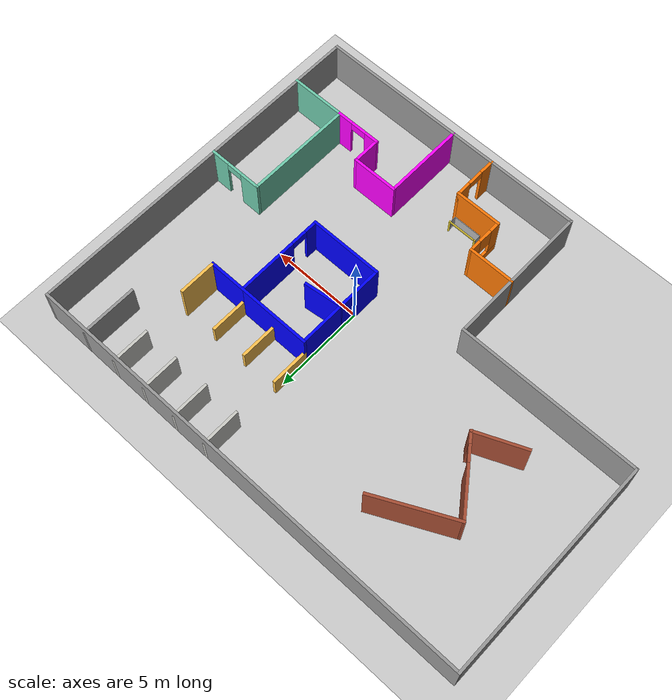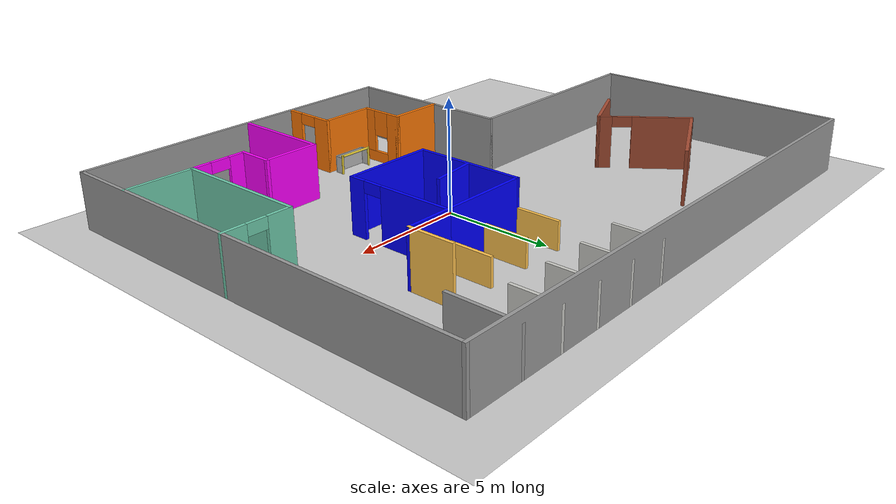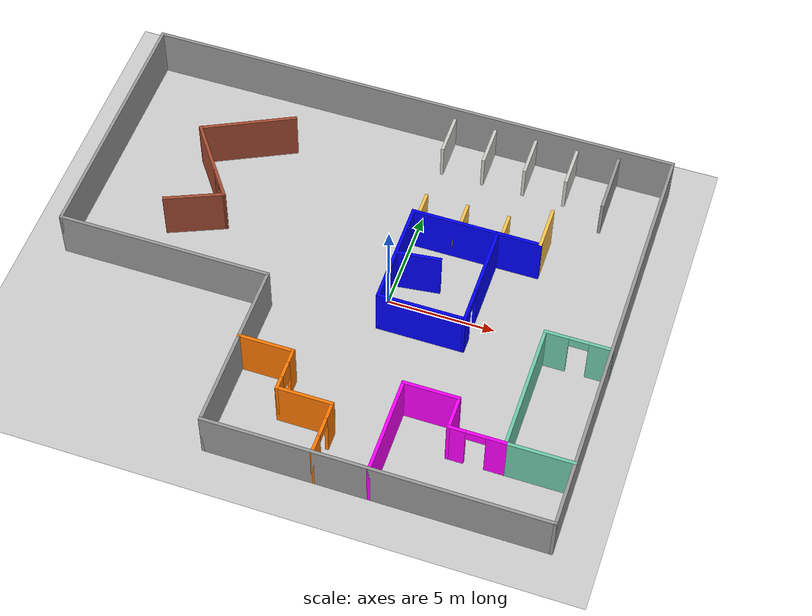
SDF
<sdf version="1.6">
 <world name="default">
  <model name="ground_plane">
   <pose>0 10 0 0 -0 0</pose>
   <static>1</static>
   <link name="link">
    <collision name="collision">
     <geometry><plane><normal>0 0 1</normal><size>100 100</size></plane></geometry>
     <surface><friction><ode><mu>100</mu><mu2>50</mu2></ode></friction></surface>
    </collision>
    <visual name="visual">
     <cast_shadows>0</cast_shadows>
     <geometry><plane><normal>0 0 1</normal><size>100 100</size></plane></geometry>
     <material>
      <script><uri>file://media/materials/scripts/gazebo.material</uri><name>Gazebo/Grey</name></script>
     </material>
    </visual>
   </link>
  </model>
  <model name="model">
   <pose>-2.25 0 0 0 -0 0</pose>
   <link name="Wall_0">
    <collision name="Wall_0_Collision">
     <geometry><box><size>12.15 0.15 2.5</size></box></geometry>
     <pose>0 0 1.25 0 -0 0</pose>
    </collision>
    <visual name="Wall_0_Visual">
     <pose>0 0 1.25 0 -0 0</pose>
     <geometry><box><size>12.15 0.15 2.5</size></box></geometry>
     <material>
      <script><uri>file://media/materials/scripts/gazebo.material</uri><name>Gazebo/Grey</name></script>
      <ambient>1 1 1 1</ambient>
     </material>
     <meta><layer>0</layer></meta>
    </visual>
    <pose>-12.75 4 0 0 0 -1.5708</pose>
   </link>
   <link name="Wall_1">
    <collision name="Wall_1_Collision">
     <geometry><box><size>10.15 0.15 2.5</size></box></geometry>
     <pose>0 0 1.25 0 -0 0</pose>
    </collision>
    <visual name="Wall_1_Visual">
     <pose>0 0 1.25 0 -0 0</pose>
     <geometry><box><size>10.15 0.15 2.5</size></box></geometry>
     <material>
      <script><uri>file://media/materials/scripts/gazebo.material</uri><name>Gazebo/Grey</name></script>
      <ambient>1 1 1 1</ambient>
     </material>
     <meta><layer>0</layer></meta>
    </visual>
    <pose>-7.75 -2 0 0 -0 0</pose>
   </link>
   <link name="Wall_11">
    <collision name="Wall_11_Collision">
     <geometry><box><size>5.15 0.15 2.5</size></box></geometry>
     <pose>0 0 1.25 0 -0 0</pose>
    </collision>
    <visual name="Wall_11_Visual">
     <pose>0 0 1.25 0 -0 0</pose>
     <geometry><box><size>5.15 0.15 2.5</size></box></geometry>
     <material>
      <script><uri>file://media/materials/scripts/gazebo.material</uri><name>Gazebo/Grey</name></script>
      <ambient>0 0 1 1</ambient>
     </material>
     <meta><layer>0</layer></meta>
    </visual>
    <pose>2.25 1 0 0 0 -1.5708</pose>
   </link>
   <link name="Wall_12">
    <collision name="Wall_12_Collision">
     <geometry><box><size>4.15 0.15 2.5</size></box></geometry>
     <pose>0 0 1.25 0 -0 0</pose>
    </collision>
    <visual name="Wall_12_Visual">
     <pose>0 0 1.25 0 -0 0</pose>
     <geometry><box><size>4.15 0.15 2.5</size></box></geometry>
     <material>
      <script><uri>file://media/materials/scripts/gazebo.material</uri><name>Gazebo/Grey</name></script>
      <ambient>0 0 1 1</ambient>
     </material>
     <meta><layer>0</layer></meta>
    </visual>
    <pose>4.25 -1.5 0 0 -0 0</pose>
   </link>
   <link name="Wall_13">
    <pose>6.25 1 0 0 -0 1.5708</pose>
    <visual name="Wall_13_Visual_0">
     <pose>-2.18435 0 1.25 0 -0 0</pose>
     <geometry><box><size>0.781301 0.15 2.5</size></box></geometry>
     <material>
      <script><uri>file://media/materials/scripts/gazebo.material</uri><name>Gazebo/Grey</name></script>
      <ambient>0 0 1 1</ambient>
     </material>
     <meta><layer>0</layer></meta>
    </visual>
    <collision name="Wall_13_Collision_0">
     <geometry><box><size>0.781301 0.15 2.5</size></box></geometry>
     <pose>-2.18435 0 1.25 0 -0 0</pose>
    </collision>
    <visual name="Wall_13_Visual_1">
     <pose>0.840651 0 1.25 0 -0 0</pose>
     <geometry><box><size>3.4687 0.15 2.5</size></box></geometry>
     <material>
      <script><uri>file://media/materials/scripts/gazebo.material</uri><name>Gazebo/Grey</name></script>
      <ambient>0 0 1 1</ambient>
     </material>
     <meta><layer>0</layer></meta>
    </visual>
    <collision name="Wall_13_Collision_1">
     <geometry><box><size>3.4687 0.15 2.5</size></box></geometry>
     <pose>0.840651 0 1.25 0 -0 0</pose>
    </collision>
    <visual name="Wall_13_Visual_2">
     <pose>-1.3437 0 2.25 0 -0 0</pose>
     <geometry><box><size>0.9 0.15 0.5</size></box></geometry>
     <material>
      <script><uri>file://media/materials/scripts/gazebo.material</uri><name>Gazebo/Grey</name></script>
      <ambient>0 0 1 1</ambient>
     </material>
     <meta><layer>0</layer></meta>
    </visual>
    <collision name="Wall_13_Collision_2">
     <geometry><box><size>0.9 0.15 0.5</size></box></geometry>
     <pose>-1.3437 0 2.25 0 -0 0</pose>
    </collision>
   </link>
   <link name="Wall_16">
    <collision name="Wall_16_Collision">
     <geometry><box><size>4.15 0.15 2.5</size></box></geometry>
     <pose>0 0 1.25 0 -0 0</pose>
    </collision>
    <visual name="Wall_16_Visual">
     <pose>0 0 1.25 0 -0 0</pose>
     <geometry><box><size>4.15 0.15 2.5</size></box></geometry>
     <material>
      <script><uri>file://media/materials/scripts/gazebo.material</uri><name>Gazebo/Grey</name></script>
      <ambient>0 0 1 1</ambient>
     </material>
     <meta><layer>0</layer></meta>
    </visual>
    <pose>4.25 3.5 0 0 -0 0</pose>
   </link>
   <link name="Wall_18">
    <collision name="Wall_18_Collision">
     <geometry><box><size>2.15 0.15 1.85</size></box></geometry>
     <pose>0 0 0.925 0 -0 0</pose>
    </collision>
    <visual name="Wall_18_Visual">
     <pose>0 0 0.925 0 -0 0</pose>
     <geometry><box><size>2.15 0.15 1.85</size></box></geometry>
     <material>
      <script><uri>file://media/materials/scripts/gazebo.material</uri><name>Gazebo/CeilingTiled</name></script>
      <ambient>0 0.333333 0.498039 1</ambient>
     </material>
     <meta><layer>0</layer></meta>
    </visual>
    <pose>2.25 9 0 0 0 -1.5708</pose>
   </link>
   <link name="Wall_2">
    <collision name="Wall_2_Collision">
     <geometry><box><size>8.15 0.15 2.5</size></box></geometry>
     <pose>0 0 1.25 0 -0 0</pose>
    </collision>
    <visual name="Wall_2_Visual">
     <pose>0 0 1.25 0 -0 0</pose>
     <geometry><box><size>8.15 0.15 2.5</size></box></geometry>
     <material>
      <script><uri>file://media/materials/scripts/gazebo.material</uri><name>Gazebo/Grey</name></script>
      <ambient>1 1 1 1</ambient>
     </material>
     <meta><layer>0</layer></meta>
    </visual>
    <pose>-2.75 -6 0 0 0 -1.5708</pose>
   </link>
   <link name="Wall_20">
    <collision name="Wall_20_Collision">
     <geometry><box><size>2.15 0.15 1.8</size></box></geometry>
     <pose>0 0 0.9 0 -0 0</pose>
    </collision>
    <visual name="Wall_20_Visual">
     <pose>0 0 0.9 0 -0 0</pose>
     <geometry><box><size>2.15 0.15 1.8</size></box></geometry>
     <material>
      <script><uri>file://media/materials/scripts/gazebo.material</uri><name>Gazebo/CeilingTiled</name></script>
      <ambient>0 0.333333 0.498039 1</ambient>
     </material>
     <meta><layer>0</layer></meta>
    </visual>
    <pose>4.25 9 0 0 0 -1.5708</pose>
   </link>
   <link name="Wall_22">
    <collision name="Wall_22_Collision">
     <geometry><box><size>2.15 0.15 1.8</size></box></geometry>
     <pose>0 0 0.9 0 -0 0</pose>
    </collision>
    <visual name="Wall_22_Visual">
     <pose>0 0 0.9 0 -0 0</pose>
     <geometry><box><size>2.15 0.15 1.8</size></box></geometry>
     <material>
      <script><uri>file://media/materials/scripts/gazebo.material</uri><name>Gazebo/CeilingTiled</name></script>
      <ambient>0 0.333333 0.498039 1</ambient>
     </material>
     <meta><layer>0</layer></meta>
    </visual>
    <pose>6.25 9 0 0 0 -1.5708</pose>
   </link>
   <link name="Wall_24">
    <collision name="Wall_24_Collision">
     <geometry><box><size>2.15 0.15 1.8</size></box></geometry>
     <pose>0 0 0.9 0 -0 0</pose>
    </collision>
    <visual name="Wall_24_Visual">
     <pose>0 0 0.9 0 -0 0</pose>
     <geometry><box><size>2.15 0.15 1.8</size></box></geometry>
     <material>
      <script><uri>file://media/materials/scripts/gazebo.material</uri><name>Gazebo/CeilingTiled</name></script>
      <ambient>0 0.333333 0.498039 1</ambient>
     </material>
     <meta><layer>0</layer></meta>
    </visual>
    <pose>8.25 9 0 0 0 -1.5708</pose>
   </link>
   <link name="Wall_26">
    <collision name="Wall_26_Collision">
     <geometry><box><size>2.15 0.15 1.25</size></box></geometry>
     <pose>0 0 0.625 0 -0 0</pose>
    </collision>
    <visual name="Wall_26_Visual">
     <pose>0 0 0.625 0 -0 0</pose>
     <geometry><box><size>2.15 0.15 1.25</size></box></geometry>
     <material>
      <script><uri>file://media/materials/scripts/gazebo.material</uri><name>Gazebo/Grey</name></script>
      <ambient>1 0.764706 0.305882 1</ambient>
     </material>
     <meta><layer>0</layer></meta>
    </visual>
    <pose>2.25 4.5 0 0 0 -1.5708</pose>
   </link>
   <link name="Wall_28">
    <collision name="Wall_28_Collision">
     <geometry><box><size>2.15 0.15 1.25</size></box></geometry>
     <pose>0 0 0.625 0 -0 0</pose>
    </collision>
    <visual name="Wall_28_Visual">
     <pose>0 0 0.625 0 -0 0</pose>
     <geometry><box><size>2.15 0.15 1.25</size></box></geometry>
     <material>
      <script><uri>file://media/materials/scripts/gazebo.material</uri><name>Gazebo/Grey</name></script>
      <ambient>1 0.764706 0.305882 1</ambient>
     </material>
     <meta><layer>0</layer></meta>
    </visual>
    <pose>4.25 4.5 0 0 -0 1.5708</pose>
   </link>
   <link name="Wall_3">
    <collision name="Wall_3_Collision">
     <geometry><box><size>15.65 0.15 2.5</size></box></geometry>
     <pose>0 0 1.25 0 -0 0</pose>
    </collision>
    <visual name="Wall_3_Visual">
     <pose>0 0 1.25 0 -0 0</pose>
     <geometry><box><size>15.65 0.15 2.5</size></box></geometry>
     <material>
      <script><uri>file://media/materials/scripts/gazebo.material</uri><name>Gazebo/Grey</name></script>
      <ambient>1 1 1 1</ambient>
     </material>
     <meta><layer>0</layer></meta>
    </visual>
    <pose>5 -10 0 0 -0 0</pose>
   </link>
   <link name="Wall_30">
    <collision name="Wall_30_Collision">
     <geometry><box><size>2.15 0.15 1.25</size></box></geometry>
     <pose>0 0 0.625 0 -0 0</pose>
    </collision>
    <visual name="Wall_30_Visual">
     <pose>0 0 0.625 0 -0 0</pose>
     <geometry><box><size>2.15 0.15 1.25</size></box></geometry>
     <material>
      <script><uri>file://media/materials/scripts/gazebo.material</uri><name>Gazebo/Grey</name></script>
      <ambient>1 0.764706 0.305882 1</ambient>
     </material>
     <meta><layer>0</layer></meta>
    </visual>
    <pose>6.25 4.5 0 0 0 -1.5708</pose>
   </link>
   <link name="Wall_32">
    <collision name="Wall_32_Collision">
     <geometry><box><size>3.15 0.15 2</size></box></geometry>
     <pose>0 0 1 0 -0 0</pose>
    </collision>
    <visual name="Wall_32_Visual">
     <pose>0 0 1 0 -0 0</pose>
     <geometry><box><size>3.15 0.15 2</size></box></geometry>
     <material>
      <script><uri>file://media/materials/scripts/gazebo.material</uri><name>Gazebo/Grey</name></script>
      <ambient>0.207843 0.207843 0.207843 1</ambient>
     </material>
     <meta><layer>0</layer></meta>
    </visual>
    <pose>10.25 8.5 0 0 0 -1.5708</pose>
   </link>
   <link name="Wall_34">
    <collision name="Wall_34_Collision">
     <geometry><box><size>2.15 0.15 2.5</size></box></geometry>
     <pose>0 0 1.25 0 -0 0</pose>
    </collision>
    <visual name="Wall_34_Visual">
     <pose>0 0 1.25 0 -0 0</pose>
     <geometry><box><size>2.15 0.15 2.5</size></box></geometry>
     <material>
      <script><uri>file://media/materials/scripts/gazebo.material</uri><name>Gazebo/Grey</name></script>
      <ambient>1 0.764706 0.305882 1</ambient>
     </material>
     <meta><layer>0</layer></meta>
    </visual>
    <pose>8.25 4.5 0 0 0 -1.5708</pose>
   </link>
   <link name="Wall_36">
    <collision name="Wall_36_Collision">
     <geometry><box><size>2.15 0.15 2.5</size></box></geometry>
     <pose>0 0 1.25 0 -0 0</pose>
    </collision>
    <visual name="Wall_36_Visual">
     <pose>0 0 1.25 0 -0 0</pose>
     <geometry><box><size>2.15 0.15 2.5</size></box></geometry>
     <material>
      <script><uri>file://media/materials/scripts/gazebo.material</uri><name>Gazebo/Grey</name></script>
      <ambient>0 0 1 1</ambient>
     </material>
     <meta><layer>0</layer></meta>
    </visual>
    <pose>7.25 3.5 0 0 -0 3.14159</pose>
   </link>
   <link name="Wall_38">
    <collision name="Wall_38_Collision">
     <geometry><box><size>2.65 0.15 2.5</size></box></geometry>
     <pose>0 0 1.25 0 -0 0</pose>
    </collision>
    <visual name="Wall_38_Visual">
     <pose>0 0 1.25 0 -0 0</pose>
     <geometry><box><size>2.65 0.15 2.5</size></box></geometry>
     <material>
      <script><uri>file://media/materials/scripts/gazebo.material</uri><name>Gazebo/Grey</name></script>
      <ambient>0.996078 0.47451 0.0196078 1</ambient>
     </material>
     <meta><layer>0</layer></meta>
    </visual>
    <pose>-1.5 -5.5 0 0 -0 0</pose>
   </link>
   <link name="Wall_39">
    <pose>-0.25 -6.5 0 0 0 -1.5708</pose>
    <visual name="Wall_39_Visual_0">
     <pose>-0.725651 0 1.25 0 -0 0</pose>
     <geometry><box><size>0.698699 0.15 2.5</size></box></geometry>
     <material>
      <script><uri>file://media/materials/scripts/gazebo.material</uri><name>Gazebo/Grey</name></script>
      <ambient>0.996078 0.47451 0.0196078 1</ambient>
     </material>
     <meta><layer>0</layer></meta>
    </visual>
    <collision name="Wall_39_Collision_0">
     <geometry><box><size>0.698699 0.15 2.5</size></box></geometry>
     <pose>-0.725651 0 1.25 0 -0 0</pose>
    </collision>
    <visual name="Wall_39_Visual_1">
     <pose>0.349349 0 0.25 0 -0 0</pose>
     <geometry><box><size>1.4513 0.15 0.5</size></box></geometry>
     <material>
      <script><uri>file://media/materials/scripts/gazebo.material</uri><name>Gazebo/Grey</name></script>
      <ambient>0.996078 0.47451 0.0196078 1</ambient>
     </material>
     <meta><layer>0</layer></meta>
    </visual>
    <collision name="Wall_39_Collision_1">
     <geometry><box><size>1.4513 0.15 0.5</size></box></geometry>
     <pose>0.349349 0 0.25 0 -0 0</pose>
    </collision>
    <visual name="Wall_39_Visual_2">
     <pose>0.749349 0 1.5 0 -0 0</pose>
     <geometry><box><size>0.651301 0.15 2</size></box></geometry>
     <material>
      <script><uri>file://media/materials/scripts/gazebo.material</uri><name>Gazebo/Grey</name></script>
      <ambient>0.996078 0.47451 0.0196078 1</ambient>
     </material>
     <meta><layer>0</layer></meta>
    </visual>
    <collision name="Wall_39_Collision_2">
     <geometry><box><size>0.651301 0.15 2</size></box></geometry>
     <pose>0.749349 0 1.5 0 -0 0</pose>
    </collision>
    <visual name="Wall_39_Visual_3">
     <pose>0.023699 0 1.9 0 -0 0</pose>
     <geometry><box><size>0.8 0.15 1.2</size></box></geometry>
     <material>
      <script><uri>file://media/materials/scripts/gazebo.material</uri><name>Gazebo/Grey</name></script>
      <ambient>0.996078 0.47451 0.0196078 1</ambient>
     </material>
     <meta><layer>0</layer></meta>
    </visual>
    <collision name="Wall_39_Collision_3">
     <geometry><box><size>0.8 0.15 1.2</size></box></geometry>
     <pose>0.023699 0 1.9 0 -0 0</pose>
    </collision>
   </link>
   <link name="Wall_4">
    <collision name="Wall_4_Collision">
     <geometry><box><size>20.15 0.15 2.5</size></box></geometry>
     <pose>0 0 1.25 0 -0 0</pose>
    </collision>
    <visual name="Wall_4_Visual">
     <pose>0 0 1.25 0 -0 0</pose>
     <geometry><box><size>20.15 0.15 2.5</size></box></geometry>
     <material>
      <script><uri>file://media/materials/scripts/gazebo.material</uri><name>Gazebo/Grey</name></script>
      <ambient>1 1 1 1</ambient>
     </material>
     <meta><layer>0</layer></meta>
    </visual>
    <pose>12.75 0 0 0 -0 1.5708</pose>
   </link>
   <link name="Wall_40">
    <collision name="Wall_40_Collision">
     <geometry><box><size>2.65 0.15 2.5</size></box></geometry>
     <pose>0 0 1.25 0 -0 0</pose>
    </collision>
    <visual name="Wall_40_Visual">
     <pose>0 0 1.25 0 -0 0</pose>
     <geometry><box><size>2.65 0.15 2.5</size></box></geometry>
     <material>
      <script><uri>file://media/materials/scripts/gazebo.material</uri><name>Gazebo/Grey</name></script>
      <ambient>0.996078 0.47451 0.0196078 1</ambient>
     </material>
     <meta><layer>0</layer></meta>
    </visual>
    <pose>1 -7.5 0 0 -0 0</pose>
   </link>
   <link name="Wall_41">
    <pose>2.25 -8.75 0 0 0 -1.5708</pose>
    <visual name="Wall_41_Visual_0">
     <pose>-0.89065 0 1.25 0 -0 0</pose>
     <geometry><box><size>0.868699 0.15 2.5</size></box></geometry>
     <material>
      <script><uri>file://media/materials/scripts/gazebo.material</uri><name>Gazebo/Grey</name></script>
      <ambient>0.996078 0.47451 0.0196078 1</ambient>
     </material>
     <meta><layer>0</layer></meta>
    </visual>
    <collision name="Wall_41_Collision_0">
     <geometry><box><size>0.868699 0.15 2.5</size></box></geometry>
     <pose>-0.89065 0 1.25 0 -0 0</pose>
    </collision>
    <visual name="Wall_41_Visual_1">
     <pose>0.88435 0 1.25 0 -0 0</pose>
     <geometry><box><size>0.881301 0.15 2.5</size></box></geometry>
     <material>
      <script><uri>file://media/materials/scripts/gazebo.material</uri><name>Gazebo/Grey</name></script>
      <ambient>0.996078 0.47451 0.0196078 1</ambient>
     </material>
     <meta><layer>0</layer></meta>
    </visual>
    <collision name="Wall_41_Collision_1">
     <geometry><box><size>0.881301 0.15 2.5</size></box></geometry>
     <pose>0.88435 0 1.25 0 -0 0</pose>
    </collision>
    <visual name="Wall_41_Visual_2">
     <pose>-0.006301 0 2.25 0 -0 0</pose>
     <geometry><box><size>0.9 0.15 0.5</size></box></geometry>
     <material>
      <script><uri>file://media/materials/scripts/gazebo.material</uri><name>Gazebo/Grey</name></script>
      <ambient>0.996078 0.47451 0.0196078 1</ambient>
     </material>
     <meta><layer>0</layer></meta>
    </visual>
    <collision name="Wall_41_Collision_2">
     <geometry><box><size>0.9 0.15 0.5</size></box></geometry>
     <pose>-0.006301 0 2.25 0 -0 0</pose>
    </collision>
   </link>
   <link name="Wall_43">
    <pose>11.25 -1 0 0 -0 3.14159</pose>
    <visual name="Wall_43_Visual_0">
     <pose>-1.02562 0 1.25 0 -0 0</pose>
     <geometry><box><size>1.09877 0.15 2.5</size></box></geometry>
     <material>
      <script><uri>file://media/materials/scripts/gazebo.material</uri><name>Gazebo/Grey</name></script>
      <ambient>0.435294 0.796078 0.67451 1</ambient>
     </material>
     <meta><layer>0</layer></meta>
    </visual>
    <collision name="Wall_43_Collision_0">
     <geometry><box><size>1.09877 0.15 2.5</size></box></geometry>
     <pose>-1.02562 0 1.25 0 -0 0</pose>
    </collision>
    <visual name="Wall_43_Visual_1">
     <pose>0.999384 0 1.25 0 -0 0</pose>
     <geometry><box><size>1.15123 0.15 2.5</size></box></geometry>
     <material>
      <script><uri>file://media/materials/scripts/gazebo.material</uri><name>Gazebo/Grey</name></script>
      <ambient>0.435294 0.796078 0.67451 1</ambient>
     </material>
     <meta><layer>0</layer></meta>
    </visual>
    <collision name="Wall_43_Collision_1">
     <geometry><box><size>1.15123 0.15 2.5</size></box></geometry>
     <pose>0.999384 0 1.25 0 -0 0</pose>
    </collision>
    <visual name="Wall_43_Visual_2">
     <pose>-0.026232 0 2.25 0 -0 0</pose>
     <geometry><box><size>0.9 0.15 0.5</size></box></geometry>
     <material>
      <script><uri>file://media/materials/scripts/gazebo.material</uri><name>Gazebo/Grey</name></script>
      <ambient>0.435294 0.796078 0.67451 1</ambient>
     </material>
     <meta><layer>0</layer></meta>
    </visual>
    <collision name="Wall_43_Collision_2">
     <geometry><box><size>0.9 0.15 0.5</size></box></geometry>
     <pose>-0.026232 0 2.25 0 -0 0</pose>
    </collision>
   </link>
   <link name="Wall_44">
    <collision name="Wall_44_Collision">
     <geometry><box><size>6.15 0.15 2.5</size></box></geometry>
     <pose>0 0 1.25 0 -0 0</pose>
    </collision>
    <visual name="Wall_44_Visual">
     <pose>0 0 1.25 0 -0 0</pose>
     <geometry><box><size>6.15 0.15 2.5</size></box></geometry>
     <material>
      <script><uri>file://media/materials/scripts/gazebo.material</uri><name>Gazebo/Grey</name></script>
      <ambient>0.435294 0.796078 0.67451 1</ambient>
     </material>
     <meta><layer>0</layer></meta>
    </visual>
    <pose>9.75 -4 0 0 0 -1.5708</pose>
   </link>
   <link name="Wall_45">
    <pose>8.5 -7 0 0 -0 3.14159</pose>
    <visual name="Wall_45_Visual_0">
     <pose>-0.865616 0 1.25 0 -0 0</pose>
     <geometry><box><size>0.918768 0.15 2.5</size></box></geometry>
     <material>
      <script><uri>file://media/materials/scripts/gazebo.material</uri><name>Gazebo/Grey</name></script>
      <ambient>1 0 1 1</ambient>
     </material>
     <meta><layer>0</layer></meta>
    </visual>
    <collision name="Wall_45_Collision_0">
     <geometry><box><size>0.918768 0.15 2.5</size></box></geometry>
     <pose>-0.865616 0 1.25 0 -0 0</pose>
    </collision>
    <visual name="Wall_45_Visual_1">
     <pose>0.909384 0 1.25 0 -0 0</pose>
     <geometry><box><size>0.831232 0.15 2.5</size></box></geometry>
     <material>
      <script><uri>file://media/materials/scripts/gazebo.material</uri><name>Gazebo/Grey</name></script>
      <ambient>1 0 1 1</ambient>
     </material>
     <meta><layer>0</layer></meta>
    </visual>
    <collision name="Wall_45_Collision_1">
     <geometry><box><size>0.831232 0.15 2.5</size></box></geometry>
     <pose>0.909384 0 1.25 0 -0 0</pose>
    </collision>
    <visual name="Wall_45_Visual_2">
     <pose>0.043768 0 2.25 0 -0 0</pose>
     <geometry><box><size>0.9 0.15 0.5</size></box></geometry>
     <material>
      <script><uri>file://media/materials/scripts/gazebo.material</uri><name>Gazebo/Grey</name></script>
      <ambient>1 0 1 1</ambient>
     </material>
     <meta><layer>0</layer></meta>
    </visual>
    <collision name="Wall_45_Collision_2">
     <geometry><box><size>0.9 0.15 0.5</size></box></geometry>
     <pose>0.043768 0 2.25 0 -0 0</pose>
    </collision>
   </link>
   <link name="Wall_46">
    <collision name="Wall_46_Collision">
     <geometry><box><size>1.65 0.15 2.5</size></box></geometry>
     <pose>0 0 1.25 0 -0 0</pose>
    </collision>
    <visual name="Wall_46_Visual">
     <pose>0 0 1.25 0 -0 0</pose>
     <geometry><box><size>1.65 0.15 2.5</size></box></geometry>
     <material>
      <script><uri>file://media/materials/scripts/gazebo.material</uri><name>Gazebo/Grey</name></script>
      <ambient>1 0 1 1</ambient>
     </material>
     <meta><layer>0</layer></meta>
    </visual>
    <pose>7.25 -6.25 0 0 -0 1.5708</pose>
   </link>
   <link name="Wall_47">
    <collision name="Wall_47_Collision">
     <geometry><box><size>2.65 0.15 2.5</size></box></geometry>
     <pose>0 0 1.25 0 -0 0</pose>
    </collision>
    <visual name="Wall_47_Visual">
     <pose>0 0 1.25 0 -0 0</pose>
     <geometry><box><size>2.65 0.15 2.5</size></box></geometry>
     <material>
      <script><uri>file://media/materials/scripts/gazebo.material</uri><name>Gazebo/Grey</name></script>
      <ambient>1 0 1 1</ambient>
     </material>
     <meta><layer>0</layer></meta>
    </visual>
    <pose>6 -5.5 0 0 -0 3.14159</pose>
   </link>
   <link name="Wall_48">
    <collision name="Wall_48_Collision">
     <geometry><box><size>4.65 0.15 2.5</size></box></geometry>
     <pose>0 0 1.25 0 -0 0</pose>
    </collision>
    <visual name="Wall_48_Visual">
     <pose>0 0 1.25 0 -0 0</pose>
     <geometry><box><size>4.65 0.15 2.5</size></box></geometry>
     <material>
      <script><uri>file://media/materials/scripts/gazebo.material</uri><name>Gazebo/Grey</name></script>
      <ambient>1 0 1 1</ambient>
     </material>
     <meta><layer>0</layer></meta>
    </visual>
    <pose>4.75 -7.75 0 0 0 -1.5708</pose>
   </link>
   <link name="Wall_5">
    <collision name="Wall_5_Collision">
     <geometry><box><size>25.65 0.15 2.5</size></box></geometry>
     <pose>0 0 1.25 0 -0 0</pose>
    </collision>
    <visual name="Wall_5_Visual">
     <pose>0 0 1.25 0 -0 0</pose>
     <geometry><box><size>25.65 0.15 2.5</size></box></geometry>
     <material>
      <script><uri>file://media/materials/scripts/gazebo.material</uri><name>Gazebo/Grey</name></script>
      <ambient>1 1 1 1</ambient>
     </material>
     <meta><layer>0</layer></meta>
    </visual>
    <pose>0 10 0 0 -0 3.14159</pose>
   </link>
   <link name="Wall_50">
    <collision name="Wall_50_Collision">
     <geometry><box><size>2.16556 0.15 2.5</size></box></geometry>
     <pose>0 0 1.25 0 -0 0</pose>
    </collision>
    <visual name="Wall_50_Visual">
     <pose>0 0 1.25 0 -0 0</pose>
     <geometry><box><size>2.16556 0.15 2.5</size></box></geometry>
     <material>
      <script><uri>file://media/materials/scripts/gazebo.material</uri><name>Gazebo/Grey</name></script>
      <ambient>0 0 1 1</ambient>
     </material>
     <meta><layer>0</layer></meta>
    </visual>
    <pose>3.25 1.125 0 0 -0 0.124355</pose>
   </link>
   <link name="Wall_52">
    <collision name="Wall_52_Collision">
     <geometry><box><size>3.15 0.15 2.5</size></box></geometry>
     <pose>0 0 1.25 0 -0 0</pose>
    </collision>
    <visual name="Wall_52_Visual">
     <pose>0 0 1.25 0 -0 0</pose>
     <geometry><box><size>3.15 0.15 2.5</size></box></geometry>
     <material>
      <script><uri>file://media/materials/scripts/gazebo.material</uri><name>Gazebo/Grey</name></script>
      <ambient>0.435294 0.796078 0.67451 1</ambient>
     </material>
     <meta><layer>0</layer></meta>
    </visual>
    <pose>11.25 -7 0 0 -0 0</pose>
   </link>
   <link name="Wall_7">
    <collision name="Wall_7_Collision">
     <geometry><box><size>4.62214 0.15 2.5</size></box></geometry>
     <pose>0 0 1.25 0 -0 0</pose>
    </collision>
    <visual name="Wall_7_Visual">
     <pose>0 0 1.25 0 -0 0</pose>
     <geometry><box><size>4.62214 0.15 2.5</size></box></geometry>
     <material>
      <script><uri>file://media/materials/scripts/gazebo.material</uri><name>Gazebo/Bricks</name></script>
      <ambient>1 1 1 1</ambient>
     </material>
     <meta><layer>0</layer></meta>
    </visual>
    <pose>-6.75 6 0 0 0 -2.67794</pose>
   </link>
   <link name="Wall_8">
    <pose>-7.5 3.3 0 0 0 -0.936774</pose>
    <visual name="Wall_8_Visual_0">
     <pose>-0.791368 0 1.25 0 -0 0</pose>
     <geometry><box><size>2.78745 0.15 2.5</size></box></geometry>
     <material>
      <script><uri>file://media/materials/scripts/gazebo.material</uri><name>Gazebo/Bricks</name></script>
      <ambient>1 1 1 1</ambient>
     </material>
     <meta><layer>0</layer></meta>
    </visual>
    <collision name="Wall_8_Collision_0">
     <geometry><box><size>2.78745 0.15 2.5</size></box></geometry>
     <pose>-0.791368 0 1.25 0 -0 0</pose>
    </collision>
    <visual name="Wall_8_Visual_1">
     <pose>1.84373 0 1.25 0 -0 0</pose>
     <geometry><box><size>0.682736 0.15 2.5</size></box></geometry>
     <material>
      <script><uri>file://media/materials/scripts/gazebo.material</uri><name>Gazebo/Bricks</name></script>
      <ambient>1 1 1 1</ambient>
     </material>
     <meta><layer>0</layer></meta>
    </visual>
    <collision name="Wall_8_Collision_1">
     <geometry><box><size>0.682736 0.15 2.5</size></box></geometry>
     <pose>1.84373 0 1.25 0 -0 0</pose>
    </collision>
    <visual name="Wall_8_Visual_2">
     <pose>1.05236 0 2.25 0 -0 0</pose>
     <geometry><box><size>0.9 0.15 0.5</size></box></geometry>
     <material>
      <script><uri>file://media/materials/scripts/gazebo.material</uri><name>Gazebo/Bricks</name></script>
      <ambient>1 1 1 1</ambient>
     </material>
     <meta><layer>0</layer></meta>
    </visual>
    <collision name="Wall_8_Collision_2">
     <geometry><box><size>0.9 0.15 0.5</size></box></geometry>
     <pose>1.05236 0 2.25 0 -0 0</pose>
    </collision>
   </link>
   <link name="Wall_9">
    <collision name="Wall_9_Collision">
     <geometry><box><size>2.8813 0.15 2.5</size></box></geometry>
     <pose>0 0 1.25 0 -0 0</pose>
    </collision>
    <visual name="Wall_9_Visual">
     <pose>0 0 1.25 0 -0 0</pose>
     <geometry><box><size>2.8813 0.15 2.5</size></box></geometry>
     <material>
      <script><uri>file://media/materials/scripts/gazebo.material</uri><name>Gazebo/Bricks</name></script>
      <ambient>1 1 1 1</ambient>
     </material>
     <meta><layer>0</layer></meta>
    </visual>
    <pose>-7.5 1.05 0 0 0 -2.72709</pose>
   </link>
   <static>1</static>
  </model>
  <model name="RoboCup 2014 SPL Goal">
   <static>1</static>
   <link name="left_post">
    <pose>0 0.8 0.45 0 -0 0</pose>
    <collision name="collision">
     <geometry><cylinder><radius>0.05</radius><length>0.9</length></cylinder></geometry>
    </collision>
    <visual name="visual">
     <geometry><cylinder><radius>0.05</radius><length>0.9</length></cylinder></geometry>
     <material>
      <script><uri>file://media/materials/scripts/gazebo.material</uri><name>Gazebo/ZincYellow</name></script>
     </material>
    </visual>
   </link>
   <link name="left_support_horiz_lower">
    <pose>0.24 0.8 0.01 0 -0 0</pose>
    <collision name="collision"><geometry><box><size>0.38 0.02 0.02</size></box></geometry></collision>
    <visual name="visual">
     <geometry><box><size>0.38 0.02 0.02</size></box></geometry>
     <material>
      <script><uri>file://media/materials/scripts/gazebo.material</uri><name>Gazebo/White</name></script>
     </material>
    </visual>
   </link>
   <link name="left_support_horiz_upper">
    <pose>0.24 0.8 0.79 0 -0 0</pose>
    <collision name="collision"><geometry><box><size>0.38 0.02 0.02</size></box></geometry></collision>
    <visual name="visual">
     <geometry><box><size>0.38 0.02 0.02</size></box></geometry>
     <material>
      <script><uri>file://media/materials/scripts/gazebo.material</uri><name>Gazebo/White</name></script>
     </material>
    </visual>
   </link>
   <link name="left_support_vertical">
    <pose>0.44 0.8 0.4 3.14159 1.57079 3.14159</pose>
    <collision name="collision"><geometry><box><size>0.8 0.02 0.02</size></box></geometry></collision>
    <visual name="visual">
     <geometry><box><size>0.8 0.02 0.02</size></box></geometry>
     <material>
      <script><uri>file://media/materials/scripts/gazebo.material</uri><name>Gazebo/White</name></script>
     </material>
    </visual>
   </link>
   <link name="right_support_horiz_lower">
    <pose>0.24 -0.8 0.01 0 -0 0</pose>
    <collision name="collision"><geometry><box><size>0.38 0.02 0.02</size></box></geometry></collision>
    <visual name="visual">
     <geometry><box><size>0.38 0.02 0.02</size></box></geometry>
     <material>
      <script><uri>file://media/materials/scripts/gazebo.material</uri><name>Gazebo/White</name></script>
     </material>
    </visual>
   </link>
   <link name="right_support_horiz_upper">
    <pose>0.24 -0.8 0.79 0 -0 0</pose>
    <collision name="collision"><geometry><box><size>0.38 0.02 0.02</size></box></geometry></collision>
    <visual name="visual">
     <geometry><box><size>0.38 0.02 0.02</size></box></geometry>
     <material>
      <script><uri>file://media/materials/scripts/gazebo.material</uri><name>Gazebo/White</name></script>
     </material>
    </visual>
   </link>
   <link name="right_support_vertical">
    <pose>0.44 -0.8 0.4 3.14159 1.57079 3.14159</pose>
    <collision name="collision"><geometry><box><size>0.8 0.02 0.02</size></box></geometry></collision>
    <visual name="visual">
     <geometry><box><size>0.8 0.02 0.02</size></box></geometry>
     <material>
      <script><uri>file://media/materials/scripts/gazebo.material</uri><name>Gazebo/White</name></script>
     </material>
    </visual>
   </link>
   <link name="center_support_horiz_lower">
    <pose>0.44 0 0.01 3.14159 1.57079 3.14159</pose>
    <collision name="collision"><geometry><box><size>0.02 1.58 0.02</size></box></geometry></collision>
    <visual name="visual">
     <geometry><box><size>0.02 1.58 0.02</size></box></geometry>
     <material>
      <script><uri>file://media/materials/scripts/gazebo.material</uri><name>Gazebo/White</name></script>
     </material>
    </visual>
   </link>
   <link name="center_support_horiz_upper">
    <pose>0.44 0 0.79 3.14159 1.57079 3.14159</pose>
    <collision name="collision"><geometry><box><size>0.02 1.58 0.02</size></box></geometry></collision>
    <visual name="visual">
     <geometry><box><size>0.02 1.58 0.02</size></box></geometry>
     <material>
      <script><uri>file://media/materials/scripts/gazebo.material</uri><name>Gazebo/White</name></script>
     </material>
    </visual>
   </link>
   <link name="right_post">
    <pose>0 -0.8 0.45 0 -0 0</pose>
    <collision name="collision">
     <geometry><cylinder><radius>0.05</radius><length>0.9</length></cylinder></geometry>
    </collision>
    <visual name="visual">
     <geometry><cylinder><radius>0.05</radius><length>0.9</length></cylinder></geometry>
     <material>
      <script><uri>file://media/materials/scripts/gazebo.material</uri><name>Gazebo/ZincYellow</name></script>
     </material>
    </visual>
   </link>
   <link name="crossbar">
    <pose>0 0 0.85 1.57 1.57 0</pose>
    <collision name="collision">
     <geometry><cylinder><radius>0.05</radius><length>1.5</length></cylinder></geometry>
    </collision>
    <visual name="visual">
     <geometry><cylinder><radius>0.05</radius><length>1.5</length></cylinder></geometry>
     <material>
      <script><uri>file://media/materials/scripts/gazebo.material</uri><name>Gazebo/ZincYellow</name></script>
     </material>
    </visual>
   </link>
   <link name="center_net">
    <pose>0.44 0 0.4 0 -0 0</pose>
    <collision name="collision"><geometry><box><size>0.01 1.6 0.8</size></box></geometry></collision>
    <visual name="visual">
     <geometry><box><size>0.01 1.6 0.8</size></box></geometry>
     <material>
      <script>
       <uri>model://robocup09_spl_field/materials/scripts/</uri>
       <uri>model://robocup09_spl_field/materials/textures/</uri>
       <name>RoboCup/Net</name>
      </script>
     </material>
    </visual>
   </link>
   <link name="left_net">
    <pose>0.24 0.8 0.4 0 -0 0</pose>
    <collision name="collision"><geometry><box><size>0.38 0.01 0.76</size></box></geometry></collision>
    <visual name="visual">
     <geometry><box><size>0.38 0.01 0.76</size></box></geometry>
     <material>
      <script>
       <uri>model://robocup09_spl_field/materials/scripts/</uri>
       <uri>model://robocup09_spl_field/materials/textures/</uri>
       <name>RoboCup/Net</name>
      </script>
     </material>
    </visual>
   </link>
   <link name="right_net">
    <pose>0.24 -0.8 0.4 0 -0 0</pose>
    <collision name="collision"><geometry><box><size>0.38 0.01 0.76</size></box></geometry></collision>
    <visual name="visual">
     <geometry><box><size>0.38 0.01 0.76</size></box></geometry>
     <material>
      <script>
       <uri>model://robocup09_spl_field/materials/scripts/</uri>
       <uri>model://robocup09_spl_field/materials/textures/</uri>
       <name>RoboCup/Net</name>
      </script>
     </material>
    </visual>
   </link>
   <pose>-1.00572 -6.8 0 0 0 -1.57248</pose>
  </model>
 </world>
</sdf>
